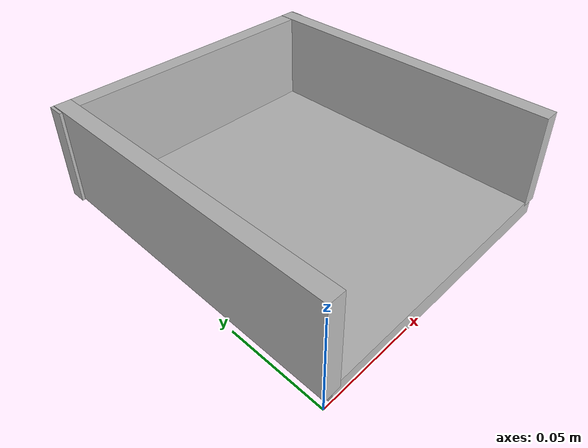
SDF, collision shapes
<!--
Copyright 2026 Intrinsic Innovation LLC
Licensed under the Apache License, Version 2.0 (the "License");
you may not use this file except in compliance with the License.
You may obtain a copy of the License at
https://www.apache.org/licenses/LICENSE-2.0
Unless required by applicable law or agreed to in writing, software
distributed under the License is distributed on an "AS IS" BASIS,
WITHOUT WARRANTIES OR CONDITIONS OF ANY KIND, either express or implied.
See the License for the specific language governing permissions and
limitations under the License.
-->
<?xml version="1.0" encoding="UTF-8"?>

<sdf version="1.6">
  <model name="part_bin">
    <link name="base_link">
      <inertial>
        <inertia>
          <ixx>0.00262275</ixx>
          <iyy>0.00227283</iyy>
          <izz>0.00435408</izz>
        </inertia>
        <mass>1.0</mass>
        <pose>0.0775 0.084 0.0285 0 0 0</pose>
      </inertial>
      <visual name="visual">
        <pose>0 0 0 0 0 0</pose>
        <geometry>
          <mesh>
            <uri>model://intrinsic/models/assets/bluebird/part_bin/part_bin.dae</uri>
          </mesh>
        </geometry>
      </visual>
      <collision name="collision_base">
        <pose>0.07815751 0.0832325 0.0038655002 0 0 0</pose>
        <geometry>
          <box>
            <size>0.14796901 0.16693099 0.009321 </size>
          </box>
        </geometry>
      </collision>
      <collision name="collision_side1">
        <pose>0.0034355002 0.0835855 0.0322025 0 0 0</pose>
        <geometry>
          <box>
            <size>0.008387 0.169325 0.050565 </size>
          </box>
        </geometry>
      </collision>
      <collision name="collision_side2">
        <pose>0.15085101 0.084357 0.0318085 0 0 0</pose>
        <geometry>
          <box>
            <size>0.008387998 0.169324 0.050565 </size>
          </box>
        </geometry>
      </collision>
      <collision name="collision_back">
        <pose>0.07673851 0.16483599 0.0316945 0 0 0</pose>
        <geometry>
          <box>
            <size>0.15791501 0.008387998 0.050565 </size>
          </box>
        </geometry>
      </collision>
    </link>
  </model>
</sdf>
